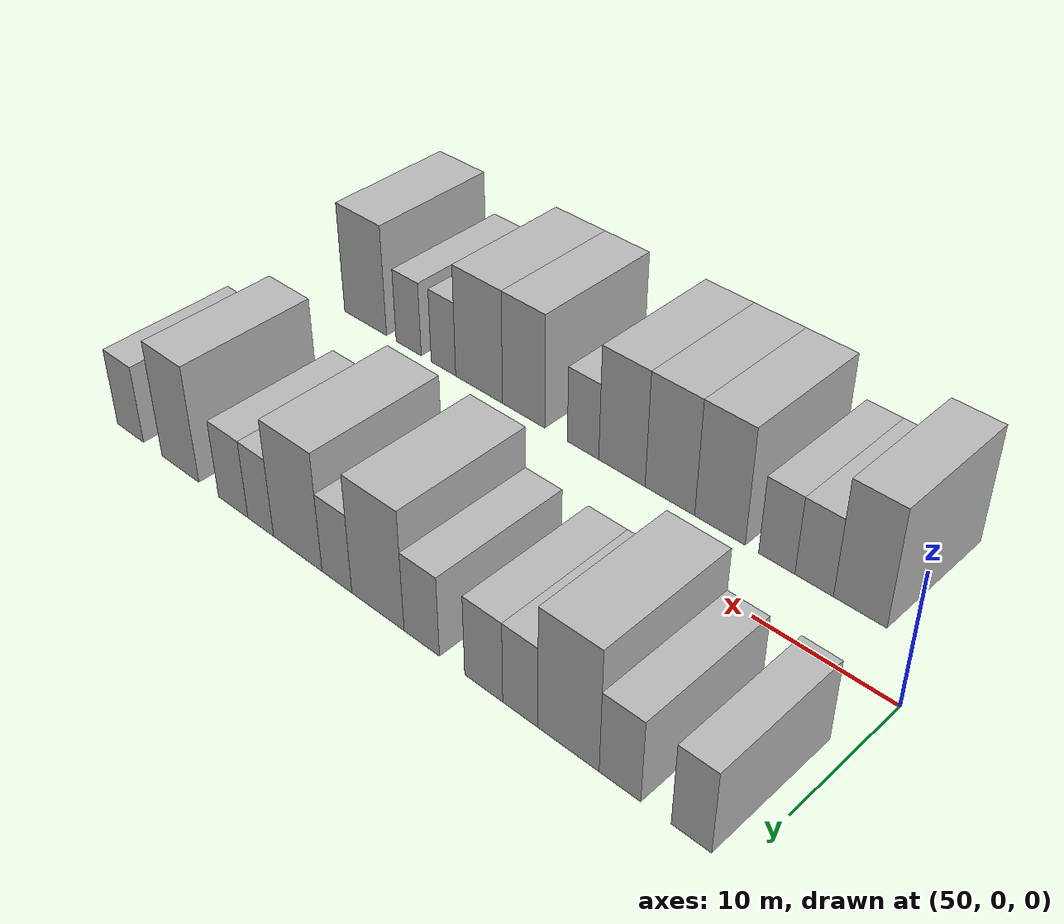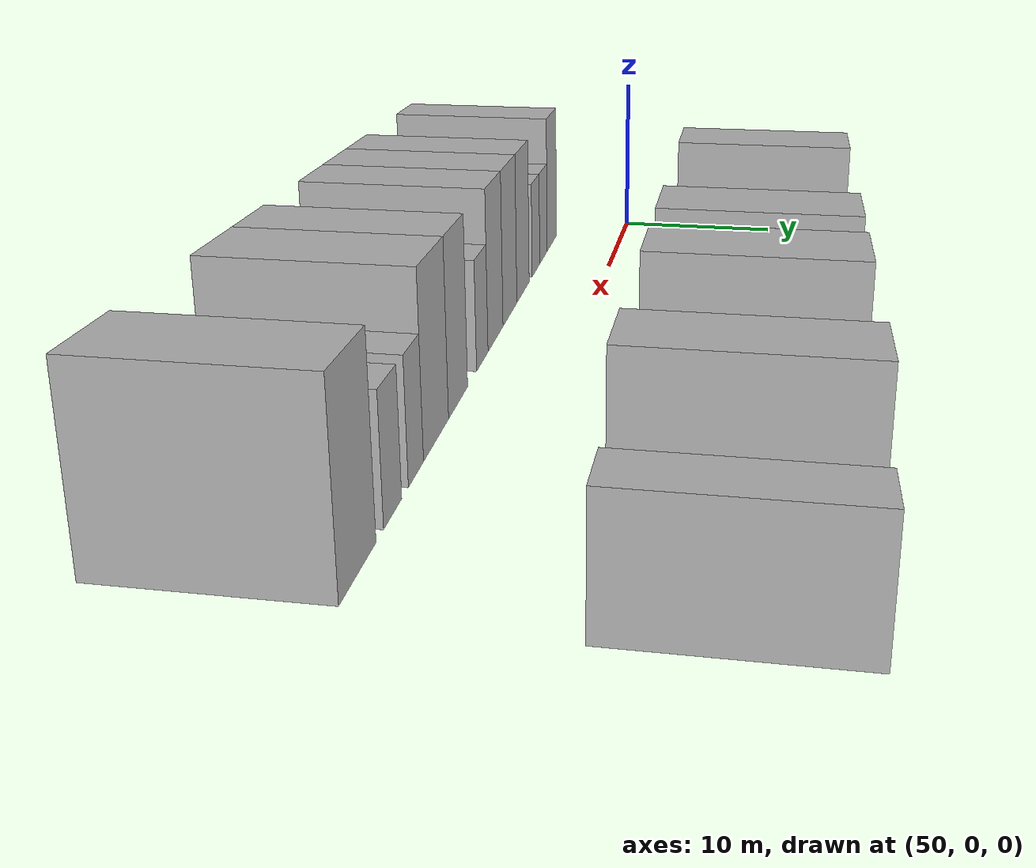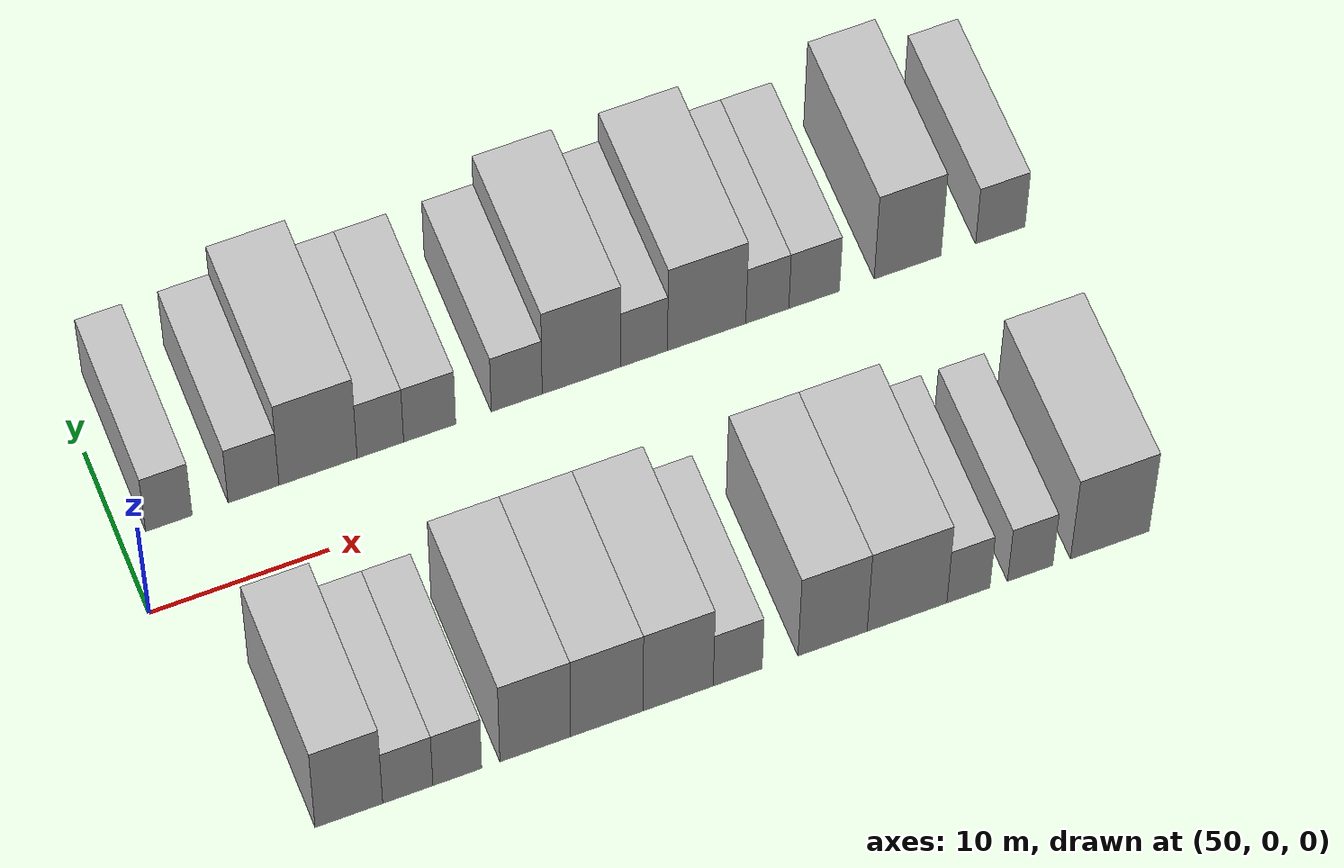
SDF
<sdf version="1.6">
 <world name="default">
  <model name="building_12">
   <static>1</static>
   <pose>52.7090 9.5000 0 0.000000 0.000000 1.570796</pose>
   <link name="link">
    <pose>0 0 3.00 0 0 0</pose>
    <collision name="collision"><geometry><box><size>10.0000 2.5830 6.0000</size></box></geometry></collision>
    <visual name="visual">
     <cast_shadows>0</cast_shadows>
     <geometry><box><size>10.0000 2.5830 6.0000</size></box></geometry>
     <material>
      <script>
       <uri>model://HANNAS_wall/materials/scripts</uri>
       <uri>model://HANNAS_wall/materials/textures</uri>
       <name>vrc/HANNAS_wall</name>
      </script>
     </material>
    </visual>
   </link>
  </model>
  <model name="building_13">
   <static>1</static>
   <pose>57.4176 9.5000 0 0.000000 0.000000 1.570796</pose>
   <link name="link">
    <pose>0 0 3.00 0 0 0</pose>
    <collision name="collision"><geometry><box><size>10.0000 2.8341 6.0000</size></box></geometry></collision>
    <visual name="visual">
     <cast_shadows>0</cast_shadows>
     <geometry><box><size>10.0000 2.8341 6.0000</size></box></geometry>
     <material>
      <script>
       <uri>model://HANNAS_wall/materials/scripts</uri>
       <uri>model://HANNAS_wall/materials/textures</uri>
       <name>vrc/HANNAS_wall</name>
      </script>
     </material>
    </visual>
   </link>
  </model>
  <model name="building_14">
   <static>1</static>
   <pose>61.0146 9.5000 0 0.000000 0.000000 1.570796</pose>
   <link name="link">
    <pose>0 0 4.50 0 0 0</pose>
    <collision name="collision"><geometry><box><size>10.0000 4.3599 9.0000</size></box></geometry></collision>
    <visual name="visual">
     <cast_shadows>0</cast_shadows>
     <geometry><box><size>10.0000 4.3599 9.0000</size></box></geometry>
     <material>
      <script>
       <uri>model://HANNAS_wall/materials/scripts</uri>
       <uri>model://HANNAS_wall/materials/textures</uri>
       <name>vrc/HANNAS_wall</name>
      </script>
     </material>
    </visual>
   </link>
  </model>
  <model name="building_15">
   <static>1</static>
   <pose>64.4956 9.5000 0 0.000000 0.000000 1.570796</pose>
   <link name="link">
    <pose>0 0 3.00 0 0 0</pose>
    <collision name="collision"><geometry><box><size>10.0000 2.6021 6.0000</size></box></geometry></collision>
    <visual name="visual">
     <cast_shadows>0</cast_shadows>
     <geometry><box><size>10.0000 2.6021 6.0000</size></box></geometry>
     <material>
      <script>
       <uri>model://HANNAS_wall/materials/scripts</uri>
       <uri>model://HANNAS_wall/materials/textures</uri>
       <name>vrc/HANNAS_wall</name>
      </script>
     </material>
    </visual>
   </link>
  </model>
  <model name="building_16">
   <static>1</static>
   <pose>67.2565 9.5000 0 0.000000 0.000000 1.570796</pose>
   <link name="link">
    <pose>0 0 3.00 0 0 0</pose>
    <collision name="collision"><geometry><box><size>10.0000 2.9195 6.0000</size></box></geometry></collision>
    <visual name="visual">
     <cast_shadows>0</cast_shadows>
     <geometry><box><size>10.0000 2.9195 6.0000</size></box></geometry>
     <material>
      <script>
       <uri>model://HANNAS_wall/materials/scripts</uri>
       <uri>model://HANNAS_wall/materials/textures</uri>
       <name>vrc/HANNAS_wall</name>
      </script>
     </material>
    </visual>
   </link>
  </model>
  <model name="building_17">
   <static>1</static>
   <pose>72.1539 9.5000 0 0.000000 0.000000 1.570796</pose>
   <link name="link">
    <pose>0 0 3.00 0 0 0</pose>
    <collision name="collision"><geometry><box><size>10.0000 2.8754 6.0000</size></box></geometry></collision>
    <visual name="visual">
     <cast_shadows>0</cast_shadows>
     <geometry><box><size>10.0000 2.8754 6.0000</size></box></geometry>
     <material>
      <script>
       <uri>model://HANNAS_wall/materials/scripts</uri>
       <uri>model://HANNAS_wall/materials/textures</uri>
       <name>vrc/HANNAS_wall</name>
      </script>
     </material>
    </visual>
   </link>
  </model>
  <model name="building_18">
   <static>1</static>
   <pose>75.8124 9.5000 0 0.000000 0.000000 1.570796</pose>
   <link name="link">
    <pose>0 0 4.50 0 0 0</pose>
    <collision name="collision"><geometry><box><size>10.0000 4.4415 9.0000</size></box></geometry></collision>
    <visual name="visual">
     <cast_shadows>0</cast_shadows>
     <geometry><box><size>10.0000 4.4415 9.0000</size></box></geometry>
     <material>
      <script>
       <uri>model://HANNAS_wall/materials/scripts</uri>
       <uri>model://HANNAS_wall/materials/textures</uri>
       <name>vrc/HANNAS_wall</name>
      </script>
     </material>
    </visual>
   </link>
  </model>
  <model name="building_19">
   <static>1</static>
   <pose>79.3534 9.5000 0 0.000000 0.000000 1.570796</pose>
   <link name="link">
    <pose>0 0 3.00 0 0 0</pose>
    <collision name="collision"><geometry><box><size>10.0000 2.6405 6.0000</size></box></geometry></collision>
    <visual name="visual">
     <cast_shadows>0</cast_shadows>
     <geometry><box><size>10.0000 2.6405 6.0000</size></box></geometry>
     <material>
      <script>
       <uri>model://HANNAS_wall/materials/scripts</uri>
       <uri>model://HANNAS_wall/materials/textures</uri>
       <name>vrc/HANNAS_wall</name>
      </script>
     </material>
    </visual>
   </link>
  </model>
  <model name="building_20">
   <static>1</static>
   <pose>82.9072 9.5000 0 0.000000 0.000000 1.570796</pose>
   <link name="link">
    <pose>0 0 4.50 0 0 0</pose>
    <collision name="collision"><geometry><box><size>10.0000 4.4671 9.0000</size></box></geometry></collision>
    <visual name="visual">
     <cast_shadows>0</cast_shadows>
     <geometry><box><size>10.0000 4.4671 9.0000</size></box></geometry>
     <material>
      <script>
       <uri>model://HANNAS_wall/materials/scripts</uri>
       <uri>model://HANNAS_wall/materials/textures</uri>
       <name>vrc/HANNAS_wall</name>
      </script>
     </material>
    </visual>
   </link>
  </model>
  <model name="building_21">
   <static>1</static>
   <pose>86.3686 9.5000 0 0.000000 0.000000 1.570796</pose>
   <link name="link">
    <pose>0 0 3.00 0 0 0</pose>
    <collision name="collision"><geometry><box><size>10.0000 2.4558 6.0000</size></box></geometry></collision>
    <visual name="visual">
     <cast_shadows>0</cast_shadows>
     <geometry><box><size>10.0000 2.4558 6.0000</size></box></geometry>
     <material>
      <script>
       <uri>model://HANNAS_wall/materials/scripts</uri>
       <uri>model://HANNAS_wall/materials/textures</uri>
       <name>vrc/HANNAS_wall</name>
      </script>
     </material>
    </visual>
   </link>
  </model>
  <model name="building_22">
   <static>1</static>
   <pose>89.0423 9.5000 0 0.000000 0.000000 1.570796</pose>
   <link name="link">
    <pose>0 0 3.00 0 0 0</pose>
    <collision name="collision"><geometry><box><size>10.0000 2.8916 6.0000</size></box></geometry></collision>
    <visual name="visual">
     <cast_shadows>0</cast_shadows>
     <geometry><box><size>10.0000 2.8916 6.0000</size></box></geometry>
     <material>
      <script>
       <uri>model://HANNAS_wall/materials/scripts</uri>
       <uri>model://HANNAS_wall/materials/textures</uri>
       <name>vrc/HANNAS_wall</name>
      </script>
     </material>
    </visual>
   </link>
  </model>
  <model name="building_23">
   <static>1</static>
   <pose>94.4059 9.5000 0 0.000000 0.000000 1.570796</pose>
   <link name="link">
    <pose>0 0 4.50 0 0 0</pose>
    <collision name="collision"><geometry><box><size>10.0000 3.8355 9.0000</size></box></geometry></collision>
    <visual name="visual">
     <cast_shadows>0</cast_shadows>
     <geometry><box><size>10.0000 3.8355 9.0000</size></box></geometry>
     <material>
      <script>
       <uri>model://HANNAS_wall/materials/scripts</uri>
       <uri>model://HANNAS_wall/materials/textures</uri>
       <name>vrc/HANNAS_wall</name>
      </script>
     </material>
    </visual>
   </link>
  </model>
  <model name="building_24">
   <static>1</static>
   <pose>99.7454 9.5000 0 0.000000 0.000000 1.570796</pose>
   <link name="link">
    <pose>0 0 3.00 0 0 0</pose>
    <collision name="collision"><geometry><box><size>10.0000 2.8435 6.0000</size></box></geometry></collision>
    <visual name="visual">
     <cast_shadows>0</cast_shadows>
     <geometry><box><size>10.0000 2.8435 6.0000</size></box></geometry>
     <material>
      <script>
       <uri>model://HANNAS_wall/materials/scripts</uri>
       <uri>model://HANNAS_wall/materials/textures</uri>
       <name>vrc/HANNAS_wall</name>
      </script>
     </material>
    </visual>
   </link>
  </model>
  <model name="building_61">
   <static>1</static>
   <pose>55.6818 -9.5000 0 0.000000 0.000000 1.570796</pose>
   <link name="link">
    <pose>0 0 4.50 0 0 0</pose>
    <collision name="collision"><geometry><box><size>10.0000 3.6902 9.0000</size></box></geometry></collision>
    <visual name="visual">
     <cast_shadows>0</cast_shadows>
     <geometry><box><size>10.0000 3.6902 9.0000</size></box></geometry>
     <material>
      <script>
       <uri>model://HANNAS_wall/materials/scripts</uri>
       <uri>model://HANNAS_wall/materials/textures</uri>
       <name>vrc/HANNAS_wall</name>
      </script>
     </material>
    </visual>
   </link>
  </model>
  <model name="building_62">
   <static>1</static>
   <pose>58.9001 -9.5000 0 0.000000 0.000000 1.570796</pose>
   <link name="link">
    <pose>0 0 3.00 0 0 0</pose>
    <collision name="collision"><geometry><box><size>10.0000 2.7464 6.0000</size></box></geometry></collision>
    <visual name="visual">
     <cast_shadows>0</cast_shadows>
     <geometry><box><size>10.0000 2.7464 6.0000</size></box></geometry>
     <material>
      <script>
       <uri>model://HANNAS_wall/materials/scripts</uri>
       <uri>model://HANNAS_wall/materials/textures</uri>
       <name>vrc/HANNAS_wall</name>
      </script>
     </material>
    </visual>
   </link>
  </model>
  <model name="building_63">
   <static>1</static>
   <pose>61.6086 -9.5000 0 0.000000 0.000000 1.570796</pose>
   <link name="link">
    <pose>0 0 3.00 0 0 0</pose>
    <collision name="collision"><geometry><box><size>10.0000 2.6706 6.0000</size></box></geometry></collision>
    <visual name="visual">
     <cast_shadows>0</cast_shadows>
     <geometry><box><size>10.0000 2.6706 6.0000</size></box></geometry>
     <material>
      <script>
       <uri>model://HANNAS_wall/materials/scripts</uri>
       <uri>model://HANNAS_wall/materials/textures</uri>
       <name>vrc/HANNAS_wall</name>
      </script>
     </material>
    </visual>
   </link>
  </model>
  <model name="building_64">
   <static>1</static>
   <pose>65.8913 -9.5000 0 0.000000 0.000000 1.570796</pose>
   <link name="link">
    <pose>0 0 4.50 0 0 0</pose>
    <collision name="collision"><geometry><box><size>10.0000 3.8949 9.0000</size></box></geometry></collision>
    <visual name="visual">
     <cast_shadows>0</cast_shadows>
     <geometry><box><size>10.0000 3.8949 9.0000</size></box></geometry>
     <material>
      <script>
       <uri>model://HANNAS_wall/materials/scripts</uri>
       <uri>model://HANNAS_wall/materials/textures</uri>
       <name>vrc/HANNAS_wall</name>
      </script>
     </material>
    </visual>
   </link>
  </model>
  <model name="building_65">
   <static>1</static>
   <pose>69.8350 -9.5000 0 0.000000 0.000000 1.570796</pose>
   <link name="link">
    <pose>0 0 4.50 0 0 0</pose>
    <collision name="collision"><geometry><box><size>10.0000 3.9925 9.0000</size></box></geometry></collision>
    <visual name="visual">
     <cast_shadows>0</cast_shadows>
     <geometry><box><size>10.0000 3.9925 9.0000</size></box></geometry>
     <material>
      <script>
       <uri>model://HANNAS_wall/materials/scripts</uri>
       <uri>model://HANNAS_wall/materials/textures</uri>
       <name>vrc/HANNAS_wall</name>
      </script>
     </material>
    </visual>
   </link>
  </model>
  <model name="building_66">
   <static>1</static>
   <pose>73.7753 -9.5000 0 0.000000 0.000000 1.570796</pose>
   <link name="link">
    <pose>0 0 4.50 0 0 0</pose>
    <collision name="collision"><geometry><box><size>10.0000 3.8880 9.0000</size></box></geometry></collision>
    <visual name="visual">
     <cast_shadows>0</cast_shadows>
     <geometry><box><size>10.0000 3.8880 9.0000</size></box></geometry>
     <material>
      <script>
       <uri>model://HANNAS_wall/materials/scripts</uri>
       <uri>model://HANNAS_wall/materials/textures</uri>
       <name>vrc/HANNAS_wall</name>
      </script>
     </material>
    </visual>
   </link>
  </model>
  <model name="building_67">
   <static>1</static>
   <pose>77.0796 -9.5000 0 0.000000 0.000000 1.570796</pose>
   <link name="link">
    <pose>0 0 3.00 0 0 0</pose>
    <collision name="collision"><geometry><box><size>10.0000 2.7206 6.0000</size></box></geometry></collision>
    <visual name="visual">
     <cast_shadows>0</cast_shadows>
     <geometry><box><size>10.0000 2.7206 6.0000</size></box></geometry>
     <material>
      <script>
       <uri>model://HANNAS_wall/materials/scripts</uri>
       <uri>model://HANNAS_wall/materials/textures</uri>
       <name>vrc/HANNAS_wall</name>
      </script>
     </material>
    </visual>
   </link>
  </model>
  <model name="building_68">
   <static>1</static>
   <pose>82.3731 -9.5000 0 0.000000 0.000000 1.570796</pose>
   <link name="link">
    <pose>0 0 4.50 0 0 0</pose>
    <collision name="collision"><geometry><box><size>10.0000 3.8664 9.0000</size></box></geometry></collision>
    <visual name="visual">
     <cast_shadows>0</cast_shadows>
     <geometry><box><size>10.0000 3.8664 9.0000</size></box></geometry>
     <material>
      <script>
       <uri>model://HANNAS_wall/materials/scripts</uri>
       <uri>model://HANNAS_wall/materials/textures</uri>
       <name>vrc/HANNAS_wall</name>
      </script>
     </material>
    </visual>
   </link>
  </model>
  <model name="building_69">
   <static>1</static>
   <pose>86.5410 -9.5000 0 0.000000 0.000000 1.570796</pose>
   <link name="link">
    <pose>0 0 4.50 0 0 0</pose>
    <collision name="collision"><geometry><box><size>10.0000 4.4694 9.0000</size></box></geometry></collision>
    <visual name="visual">
     <cast_shadows>0</cast_shadows>
     <geometry><box><size>10.0000 4.4694 9.0000</size></box></geometry>
     <material>
      <script>
       <uri>model://HANNAS_wall/materials/scripts</uri>
       <uri>model://HANNAS_wall/materials/textures</uri>
       <name>vrc/HANNAS_wall</name>
      </script>
     </material>
    </visual>
   </link>
  </model>
  <model name="building_70">
   <static>1</static>
   <pose>89.9842 -9.5000 0 0.000000 0.000000 1.570796</pose>
   <link name="link">
    <pose>0 0 3.00 0 0 0</pose>
    <collision name="collision"><geometry><box><size>10.0000 2.4170 6.0000</size></box></geometry></collision>
    <visual name="visual">
     <cast_shadows>0</cast_shadows>
     <geometry><box><size>10.0000 2.4170 6.0000</size></box></geometry>
     <material>
      <script>
       <uri>model://HANNAS_wall/materials/scripts</uri>
       <uri>model://HANNAS_wall/materials/textures</uri>
       <name>vrc/HANNAS_wall</name>
      </script>
     </material>
    </visual>
   </link>
  </model>
  <model name="building_71">
   <static>1</static>
   <pose>93.4689 -9.5000 0 0.000000 0.000000 1.570796</pose>
   <link name="link">
    <pose>0 0 3.00 0 0 0</pose>
    <collision name="collision"><geometry><box><size>10.0000 2.5525 6.0000</size></box></geometry></collision>
    <visual name="visual">
     <cast_shadows>0</cast_shadows>
     <geometry><box><size>10.0000 2.5525 6.0000</size></box></geometry>
     <material>
      <script>
       <uri>model://HANNAS_wall/materials/scripts</uri>
       <uri>model://HANNAS_wall/materials/textures</uri>
       <name>vrc/HANNAS_wall</name>
      </script>
     </material>
    </visual>
   </link>
  </model>
  <model name="building_72">
   <static>1</static>
   <pose>97.9680 -9.5000 0 0.000000 0.000000 1.570796</pose>
   <link name="link">
    <pose>0 0 4.50 0 0 0</pose>
    <collision name="collision"><geometry><box><size>10.0000 4.4457 9.0000</size></box></geometry></collision>
    <visual name="visual">
     <cast_shadows>0</cast_shadows>
     <geometry><box><size>10.0000 4.4457 9.0000</size></box></geometry>
     <material>
      <script>
       <uri>model://HANNAS_wall/materials/scripts</uri>
       <uri>model://HANNAS_wall/materials/textures</uri>
       <name>vrc/HANNAS_wall</name>
      </script>
     </material>
    </visual>
   </link>
  </model>
 </world>
</sdf>
